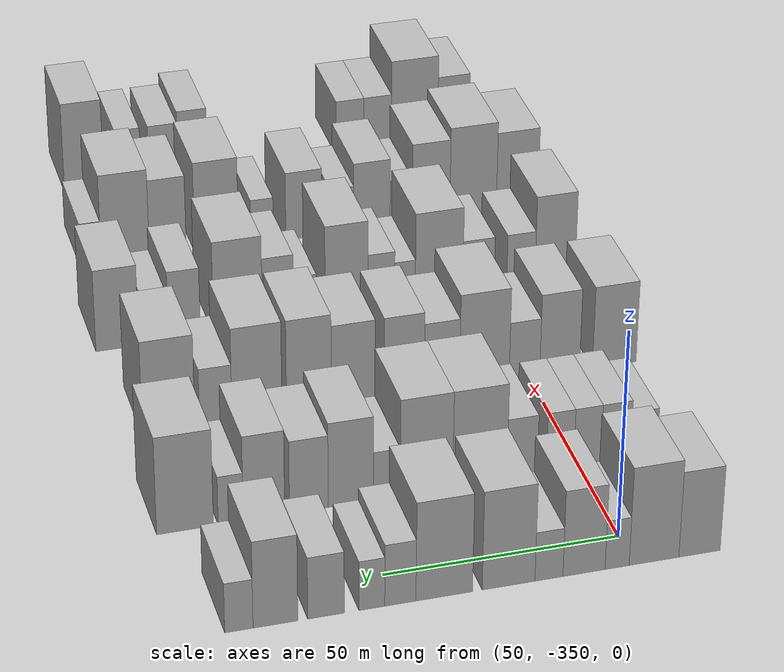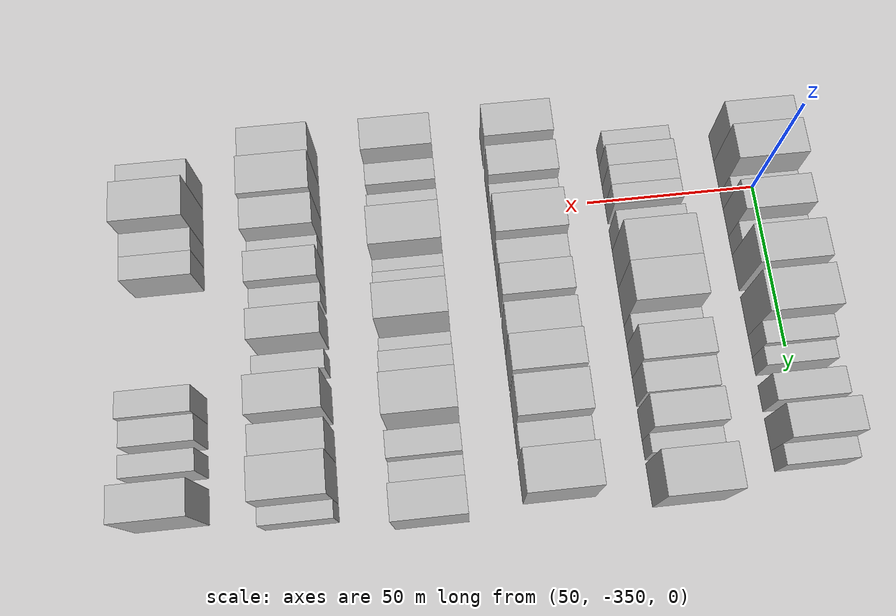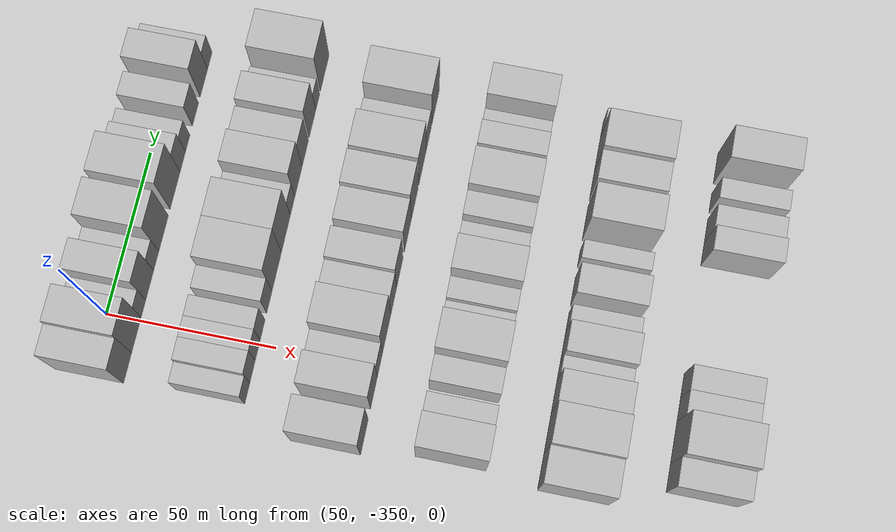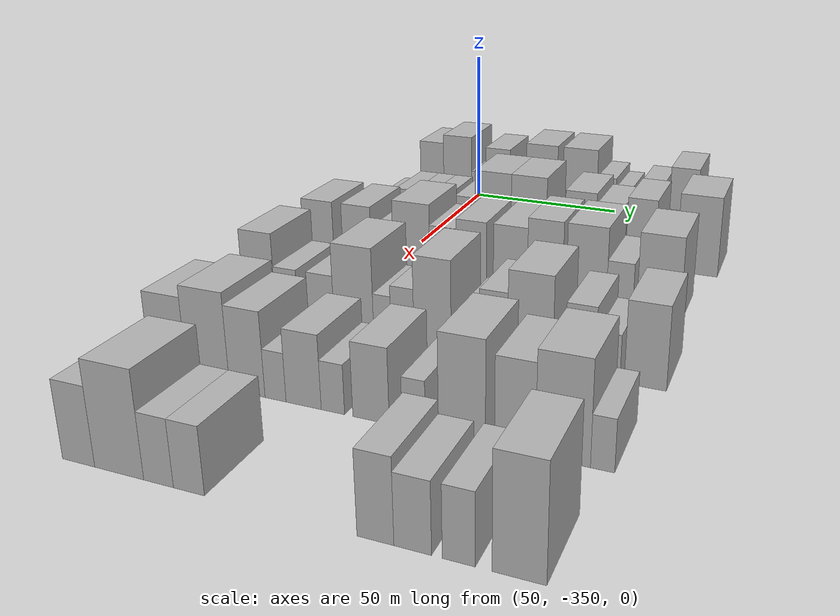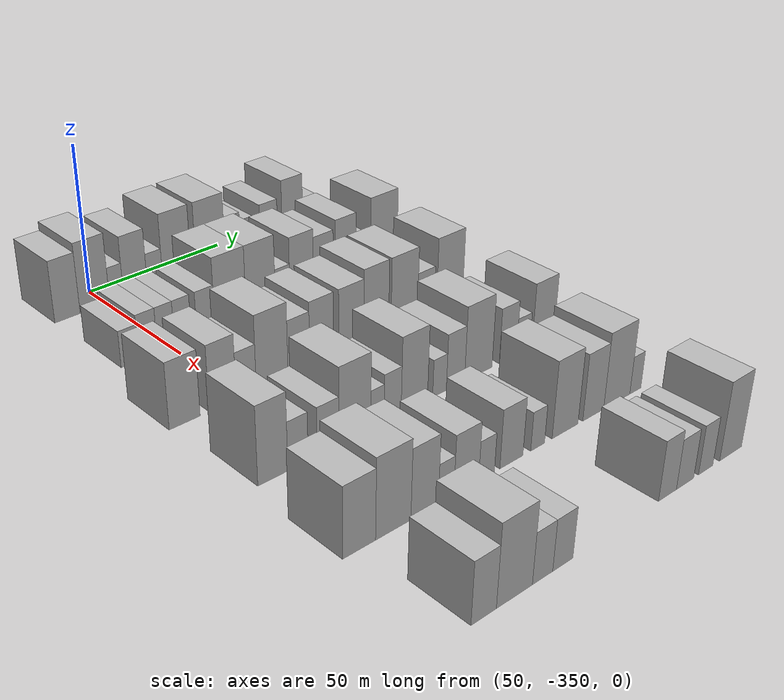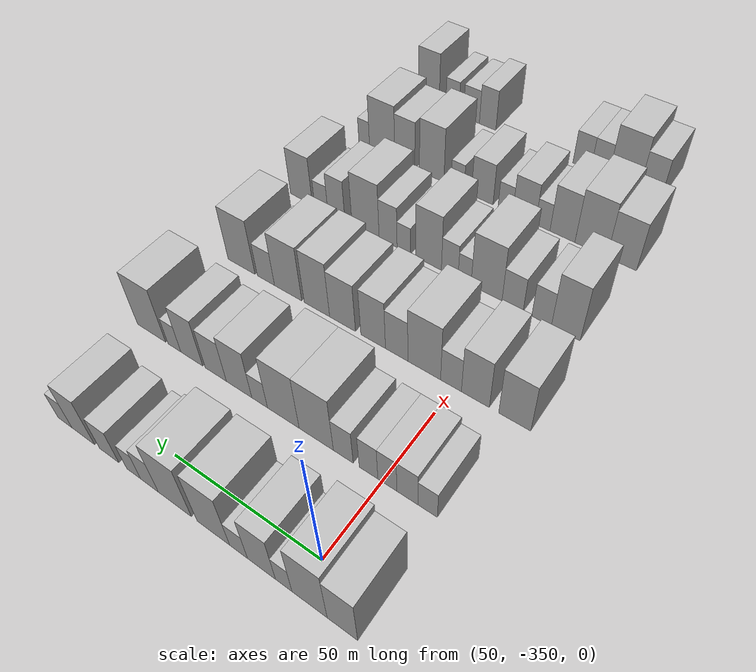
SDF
<sdf version="1.6">
 <world name="default">
  <model name="building_25">
   <static>1</static>
   <pose>50.0000 -363.9392 0 0.000000 0.000000 0.000000</pose>
   <link name="link">
    <pose>0 0 10.50 0 0 0</pose>
    <collision name="collision"><geometry><box><size>20.0000 8.8830 21.0000</size></box></geometry></collision>
    <visual name="visual">
     <cast_shadows>0</cast_shadows>
     <geometry><box><size>20.0000 8.8830 21.0000</size></box></geometry>
     <material>
      <script>
       <uri>model://HANNAS_wall/materials/scripts</uri>
       <uri>model://HANNAS_wall/materials/textures</uri>
       <name>vrc/HANNAS_wall</name>
      </script>
     </material>
    </visual>
   </link>
  </model>
  <model name="building_26">
   <static>1</static>
   <pose>50.0000 -354.1854 0 0.000000 0.000000 0.000000</pose>
   <link name="link">
    <pose>0 0 12.00 0 0 0</pose>
    <collision name="collision"><geometry><box><size>20.0000 10.6245 24.0000</size></box></geometry></collision>
    <visual name="visual">
     <cast_shadows>0</cast_shadows>
     <geometry><box><size>20.0000 10.6245 24.0000</size></box></geometry>
     <material>
      <script>
       <uri>model://HANNAS_wall/materials/scripts</uri>
       <uri>model://HANNAS_wall/materials/textures</uri>
       <name>vrc/HANNAS_wall</name>
      </script>
     </material>
    </visual>
   </link>
  </model>
  <model name="building_27">
   <static>1</static>
   <pose>50.0000 -346.3049 0 0.000000 0.000000 0.000000</pose>
   <link name="link">
    <pose>0 0 6.00 0 0 0</pose>
    <collision name="collision"><geometry><box><size>20.0000 5.1363 12.0000</size></box></geometry></collision>
    <visual name="visual">
     <cast_shadows>0</cast_shadows>
     <geometry><box><size>20.0000 5.1363 12.0000</size></box></geometry>
     <material>
      <script>
       <uri>model://HANNAS_wall/materials/scripts</uri>
       <uri>model://HANNAS_wall/materials/textures</uri>
       <name>vrc/HANNAS_wall</name>
      </script>
     </material>
    </visual>
   </link>
  </model>
  <model name="building_28">
   <static>1</static>
   <pose>50.0000 -339.2706 0 0.000000 0.000000 0.000000</pose>
   <link name="link">
    <pose>0 0 10.50 0 0 0</pose>
    <collision name="collision"><geometry><box><size>20.0000 8.9324 21.0000</size></box></geometry></collision>
    <visual name="visual">
     <cast_shadows>0</cast_shadows>
     <geometry><box><size>20.0000 8.9324 21.0000</size></box></geometry>
     <material>
      <script>
       <uri>model://HANNAS_wall/materials/scripts</uri>
       <uri>model://HANNAS_wall/materials/textures</uri>
       <name>vrc/HANNAS_wall</name>
      </script>
     </material>
    </visual>
   </link>
  </model>
  <model name="building_29">
   <static>1</static>
   <pose>50.0000 -331.8563 0 0.000000 0.000000 0.000000</pose>
   <link name="link">
    <pose>0 0 6.00 0 0 0</pose>
    <collision name="collision"><geometry><box><size>20.0000 5.8960 12.0000</size></box></geometry></collision>
    <visual name="visual">
     <cast_shadows>0</cast_shadows>
     <geometry><box><size>20.0000 5.8960 12.0000</size></box></geometry>
     <material>
      <script>
       <uri>model://HANNAS_wall/materials/scripts</uri>
       <uri>model://HANNAS_wall/materials/textures</uri>
       <name>vrc/HANNAS_wall</name>
      </script>
     </material>
    </visual>
   </link>
  </model>
  <model name="building_30">
   <static>1</static>
   <pose>50.0000 -323.3774 0 0.000000 0.000000 0.000000</pose>
   <link name="link">
    <pose>0 0 12.00 0 0 0</pose>
    <collision name="collision"><geometry><box><size>20.0000 11.0619 24.0000</size></box></geometry></collision>
    <visual name="visual">
     <cast_shadows>0</cast_shadows>
     <geometry><box><size>20.0000 11.0619 24.0000</size></box></geometry>
     <material>
      <script>
       <uri>model://HANNAS_wall/materials/scripts</uri>
       <uri>model://HANNAS_wall/materials/textures</uri>
       <name>vrc/HANNAS_wall</name>
      </script>
     </material>
    </visual>
   </link>
  </model>
  <model name="building_31">
   <static>1</static>
   <pose>50.0000 -309.9637 0 0.000000 0.000000 0.000000</pose>
   <link name="link">
    <pose>0 0 12.00 0 0 0</pose>
    <collision name="collision"><geometry><box><size>20.0000 11.7655 24.0000</size></box></geometry></collision>
    <visual name="visual">
     <cast_shadows>0</cast_shadows>
     <geometry><box><size>20.0000 11.7655 24.0000</size></box></geometry>
     <material>
      <script>
       <uri>model://HANNAS_wall/materials/scripts</uri>
       <uri>model://HANNAS_wall/materials/textures</uri>
       <name>vrc/HANNAS_wall</name>
      </script>
     </material>
    </visual>
   </link>
  </model>
  <model name="building_32">
   <static>1</static>
   <pose>50.0000 -300.8598 0 0.000000 0.000000 0.000000</pose>
   <link name="link">
    <pose>0 0 7.50 0 0 0</pose>
    <collision name="collision"><geometry><box><size>20.0000 6.4424 15.0000</size></box></geometry></collision>
    <visual name="visual">
     <cast_shadows>0</cast_shadows>
     <geometry><box><size>20.0000 6.4424 15.0000</size></box></geometry>
     <material>
      <script>
       <uri>model://HANNAS_wall/materials/scripts</uri>
       <uri>model://HANNAS_wall/materials/textures</uri>
       <name>vrc/HANNAS_wall</name>
      </script>
     </material>
    </visual>
   </link>
  </model>
  <model name="building_33">
   <static>1</static>
   <pose>50.0000 -294.9882 0 0.000000 0.000000 0.000000</pose>
   <link name="link">
    <pose>0 0 6.00 0 0 0</pose>
    <collision name="collision"><geometry><box><size>20.0000 5.3007 12.0000</size></box></geometry></collision>
    <visual name="visual">
     <cast_shadows>0</cast_shadows>
     <geometry><box><size>20.0000 5.3007 12.0000</size></box></geometry>
     <material>
      <script>
       <uri>model://HANNAS_wall/materials/scripts</uri>
       <uri>model://HANNAS_wall/materials/textures</uri>
       <name>vrc/HANNAS_wall</name>
      </script>
     </material>
    </visual>
   </link>
  </model>
  <model name="building_34">
   <static>1</static>
   <pose>50.0000 -285.6008 0 0.000000 0.000000 0.000000</pose>
   <link name="link">
    <pose>0 0 7.50 0 0 0</pose>
    <collision name="collision"><geometry><box><size>20.0000 7.4743 15.0000</size></box></geometry></collision>
    <visual name="visual">
     <cast_shadows>0</cast_shadows>
     <geometry><box><size>20.0000 7.4743 15.0000</size></box></geometry>
     <material>
      <script>
       <uri>model://HANNAS_wall/materials/scripts</uri>
       <uri>model://HANNAS_wall/materials/textures</uri>
       <name>vrc/HANNAS_wall</name>
      </script>
     </material>
    </visual>
   </link>
  </model>
  <model name="building_35">
   <static>1</static>
   <pose>50.0000 -275.3155 0 0.000000 0.000000 0.000000</pose>
   <link name="link">
    <pose>0 0 10.50 0 0 0</pose>
    <collision name="collision"><geometry><box><size>20.0000 9.0963 21.0000</size></box></geometry></collision>
    <visual name="visual">
     <cast_shadows>0</cast_shadows>
     <geometry><box><size>20.0000 9.0963 21.0000</size></box></geometry>
     <material>
      <script>
       <uri>model://HANNAS_wall/materials/scripts</uri>
       <uri>model://HANNAS_wall/materials/textures</uri>
       <name>vrc/HANNAS_wall</name>
      </script>
     </material>
    </visual>
   </link>
  </model>
  <model name="building_36">
   <static>1</static>
   <pose>50.0000 -267.9105 0 0.000000 0.000000 0.000000</pose>
   <link name="link">
    <pose>0 0 6.00 0 0 0</pose>
    <collision name="collision"><geometry><box><size>20.0000 5.7137 12.0000</size></box></geometry></collision>
    <visual name="visual">
     <cast_shadows>0</cast_shadows>
     <geometry><box><size>20.0000 5.7137 12.0000</size></box></geometry>
     <material>
      <script>
       <uri>model://HANNAS_wall/materials/scripts</uri>
       <uri>model://HANNAS_wall/materials/textures</uri>
       <name>vrc/HANNAS_wall</name>
      </script>
     </material>
    </visual>
   </link>
  </model>
  <model name="building_154">
   <static>1</static>
   <pose>85.0000 -364.2428 0 0.000000 0.000000 0.000000</pose>
   <link name="link">
    <pose>0 0 6.00 0 0 0</pose>
    <collision name="collision"><geometry><box><size>20.0000 5.9729 12.0000</size></box></geometry></collision>
    <visual name="visual">
     <cast_shadows>0</cast_shadows>
     <geometry><box><size>20.0000 5.9729 12.0000</size></box></geometry>
     <material>
      <script>
       <uri>model://HANNAS_wall/materials/scripts</uri>
       <uri>model://HANNAS_wall/materials/textures</uri>
       <name>vrc/HANNAS_wall</name>
      </script>
     </material>
    </visual>
   </link>
  </model>
  <model name="building_155">
   <static>1</static>
   <pose>85.0000 -357.9849 0 0.000000 0.000000 0.000000</pose>
   <link name="link">
    <pose>0 0 7.50 0 0 0</pose>
    <collision name="collision"><geometry><box><size>20.0000 6.5430 15.0000</size></box></geometry></collision>
    <visual name="visual">
     <cast_shadows>0</cast_shadows>
     <geometry><box><size>20.0000 6.5430 15.0000</size></box></geometry>
     <material>
      <script>
       <uri>model://HANNAS_wall/materials/scripts</uri>
       <uri>model://HANNAS_wall/materials/textures</uri>
       <name>vrc/HANNAS_wall</name>
      </script>
     </material>
    </visual>
   </link>
  </model>
  <model name="building_156">
   <static>1</static>
   <pose>85.0000 -351.6870 0 0.000000 0.000000 0.000000</pose>
   <link name="link">
    <pose>0 0 7.50 0 0 0</pose>
    <collision name="collision"><geometry><box><size>20.0000 6.0528 15.0000</size></box></geometry></collision>
    <visual name="visual">
     <cast_shadows>0</cast_shadows>
     <geometry><box><size>20.0000 6.0528 15.0000</size></box></geometry>
     <material>
      <script>
       <uri>model://HANNAS_wall/materials/scripts</uri>
       <uri>model://HANNAS_wall/materials/textures</uri>
       <name>vrc/HANNAS_wall</name>
      </script>
     </material>
    </visual>
   </link>
  </model>
  <model name="building_157">
   <static>1</static>
   <pose>85.0000 -345.6336 0 0.000000 0.000000 0.000000</pose>
   <link name="link">
    <pose>0 0 7.50 0 0 0</pose>
    <collision name="collision"><geometry><box><size>20.0000 6.0540 15.0000</size></box></geometry></collision>
    <visual name="visual">
     <cast_shadows>0</cast_shadows>
     <geometry><box><size>20.0000 6.0540 15.0000</size></box></geometry>
     <material>
      <script>
       <uri>model://HANNAS_wall/materials/scripts</uri>
       <uri>model://HANNAS_wall/materials/textures</uri>
       <name>vrc/HANNAS_wall</name>
      </script>
     </material>
    </visual>
   </link>
  </model>
  <model name="building_158">
   <static>1</static>
   <pose>85.0000 -337.2817 0 0.000000 0.000000 0.000000</pose>
   <link name="link">
    <pose>0 0 7.50 0 0 0</pose>
    <collision name="collision"><geometry><box><size>20.0000 6.6499 15.0000</size></box></geometry></collision>
    <visual name="visual">
     <cast_shadows>0</cast_shadows>
     <geometry><box><size>20.0000 6.6499 15.0000</size></box></geometry>
     <material>
      <script>
       <uri>model://HANNAS_wall/materials/scripts</uri>
       <uri>model://HANNAS_wall/materials/textures</uri>
       <name>vrc/HANNAS_wall</name>
      </script>
     </material>
    </visual>
   </link>
  </model>
  <model name="building_159">
   <static>1</static>
   <pose>85.0000 -328.0324 0 0.000000 0.000000 0.000000</pose>
   <link name="link">
    <pose>0 0 12.00 0 0 0</pose>
    <collision name="collision"><geometry><box><size>20.0000 11.8487 24.0000</size></box></geometry></collision>
    <visual name="visual">
     <cast_shadows>0</cast_shadows>
     <geometry><box><size>20.0000 11.8487 24.0000</size></box></geometry>
     <material>
      <script>
       <uri>model://HANNAS_wall/materials/scripts</uri>
       <uri>model://HANNAS_wall/materials/textures</uri>
       <name>vrc/HANNAS_wall</name>
      </script>
     </material>
    </visual>
   </link>
  </model>
  <model name="building_160">
   <static>1</static>
   <pose>85.0000 -316.4117 0 0.000000 0.000000 0.000000</pose>
   <link name="link">
    <pose>0 0 12.00 0 0 0</pose>
    <collision name="collision"><geometry><box><size>20.0000 11.3928 24.0000</size></box></geometry></collision>
    <visual name="visual">
     <cast_shadows>0</cast_shadows>
     <geometry><box><size>20.0000 11.3928 24.0000</size></box></geometry>
     <material>
      <script>
       <uri>model://HANNAS_wall/materials/scripts</uri>
       <uri>model://HANNAS_wall/materials/textures</uri>
       <name>vrc/HANNAS_wall</name>
      </script>
     </material>
    </visual>
   </link>
  </model>
  <model name="building_161">
   <static>1</static>
   <pose>85.0000 -307.8122 0 0.000000 0.000000 0.000000</pose>
   <link name="link">
    <pose>0 0 6.00 0 0 0</pose>
    <collision name="collision"><geometry><box><size>20.0000 5.8061 12.0000</size></box></geometry></collision>
    <visual name="visual">
     <cast_shadows>0</cast_shadows>
     <geometry><box><size>20.0000 5.8061 12.0000</size></box></geometry>
     <material>
      <script>
       <uri>model://HANNAS_wall/materials/scripts</uri>
       <uri>model://HANNAS_wall/materials/textures</uri>
       <name>vrc/HANNAS_wall</name>
      </script>
     </material>
    </visual>
   </link>
  </model>
  <model name="building_162">
   <static>1</static>
   <pose>85.0000 -300.0781 0 0.000000 0.000000 0.000000</pose>
   <link name="link">
    <pose>0 0 10.50 0 0 0</pose>
    <collision name="collision"><geometry><box><size>20.0000 9.6621 21.0000</size></box></geometry></collision>
    <visual name="visual">
     <cast_shadows>0</cast_shadows>
     <geometry><box><size>20.0000 9.6621 21.0000</size></box></geometry>
     <material>
      <script>
       <uri>model://HANNAS_wall/materials/scripts</uri>
       <uri>model://HANNAS_wall/materials/textures</uri>
       <name>vrc/HANNAS_wall</name>
      </script>
     </material>
    </visual>
   </link>
  </model>
  <model name="building_163">
   <static>1</static>
   <pose>85.0000 -291.1208 0 0.000000 0.000000 0.000000</pose>
   <link name="link">
    <pose>0 0 9.00 0 0 0</pose>
    <collision name="collision"><geometry><box><size>20.0000 8.2526 18.0000</size></box></geometry></collision>
    <visual name="visual">
     <cast_shadows>0</cast_shadows>
     <geometry><box><size>20.0000 8.2526 18.0000</size></box></geometry>
     <material>
      <script>
       <uri>model://HANNAS_wall/materials/scripts</uri>
       <uri>model://HANNAS_wall/materials/textures</uri>
       <name>vrc/HANNAS_wall</name>
      </script>
     </material>
    </visual>
   </link>
  </model>
  <model name="building_164">
   <static>1</static>
   <pose>85.0000 -281.5907 0 0.000000 0.000000 0.000000</pose>
   <link name="link">
    <pose>0 0 10.50 0 0 0</pose>
    <collision name="collision"><geometry><box><size>20.0000 8.8075 21.0000</size></box></geometry></collision>
    <visual name="visual">
     <cast_shadows>0</cast_shadows>
     <geometry><box><size>20.0000 8.8075 21.0000</size></box></geometry>
     <material>
      <script>
       <uri>model://HANNAS_wall/materials/scripts</uri>
       <uri>model://HANNAS_wall/materials/textures</uri>
       <name>vrc/HANNAS_wall</name>
      </script>
     </material>
    </visual>
   </link>
  </model>
  <model name="building_165">
   <static>1</static>
   <pose>85.0000 -274.5434 0 0.000000 0.000000 0.000000</pose>
   <link name="link">
    <pose>0 0 6.00 0 0 0</pose>
    <collision name="collision"><geometry><box><size>20.0000 5.2871 12.0000</size></box></geometry></collision>
    <visual name="visual">
     <cast_shadows>0</cast_shadows>
     <geometry><box><size>20.0000 5.2871 12.0000</size></box></geometry>
     <material>
      <script>
       <uri>model://HANNAS_wall/materials/scripts</uri>
       <uri>model://HANNAS_wall/materials/textures</uri>
       <name>vrc/HANNAS_wall</name>
      </script>
     </material>
    </visual>
   </link>
  </model>
  <model name="building_166">
   <static>1</static>
   <pose>85.0000 -264.9329 0 0.000000 0.000000 0.000000</pose>
   <link name="link">
    <pose>0 0 12.00 0 0 0</pose>
    <collision name="collision"><geometry><box><size>20.0000 11.9340 24.0000</size></box></geometry></collision>
    <visual name="visual">
     <cast_shadows>0</cast_shadows>
     <geometry><box><size>20.0000 11.9340 24.0000</size></box></geometry>
     <material>
      <script>
       <uri>model://HANNAS_wall/materials/scripts</uri>
       <uri>model://HANNAS_wall/materials/textures</uri>
       <name>vrc/HANNAS_wall</name>
      </script>
     </material>
    </visual>
   </link>
  </model>
  <model name="building_279">
   <static>1</static>
   <pose>120.0000 -369.6785 0 0.000000 0.000000 0.000000</pose>
   <link name="link">
    <pose>0 0 10.50 0 0 0</pose>
    <collision name="collision"><geometry><box><size>20.0000 10.1361 21.0000</size></box></geometry></collision>
    <visual name="visual">
     <cast_shadows>0</cast_shadows>
     <geometry><box><size>20.0000 10.1361 21.0000</size></box></geometry>
     <material>
      <script>
       <uri>model://HANNAS_wall/materials/scripts</uri>
       <uri>model://HANNAS_wall/materials/textures</uri>
       <name>vrc/HANNAS_wall</name>
      </script>
     </material>
    </visual>
   </link>
  </model>
  <model name="building_280">
   <static>1</static>
   <pose>120.0000 -357.0110 0 0.000000 0.000000 0.000000</pose>
   <link name="link">
    <pose>0 0 10.50 0 0 0</pose>
    <collision name="collision"><geometry><box><size>20.0000 9.1988 21.0000</size></box></geometry></collision>
    <visual name="visual">
     <cast_shadows>0</cast_shadows>
     <geometry><box><size>20.0000 9.1988 21.0000</size></box></geometry>
     <material>
      <script>
       <uri>model://HANNAS_wall/materials/scripts</uri>
       <uri>model://HANNAS_wall/materials/textures</uri>
       <name>vrc/HANNAS_wall</name>
      </script>
     </material>
    </visual>
   </link>
  </model>
  <model name="building_281">
   <static>1</static>
   <pose>120.0000 -348.9032 0 0.000000 0.000000 0.000000</pose>
   <link name="link">
    <pose>0 0 7.50 0 0 0</pose>
    <collision name="collision"><geometry><box><size>20.0000 7.0169 15.0000</size></box></geometry></collision>
    <visual name="visual">
     <cast_shadows>0</cast_shadows>
     <geometry><box><size>20.0000 7.0169 15.0000</size></box></geometry>
     <material>
      <script>
       <uri>model://HANNAS_wall/materials/scripts</uri>
       <uri>model://HANNAS_wall/materials/textures</uri>
       <name>vrc/HANNAS_wall</name>
      </script>
     </material>
    </visual>
   </link>
  </model>
  <model name="building_282">
   <static>1</static>
   <pose>120.0000 -339.7123 0 0.000000 0.000000 0.000000</pose>
   <link name="link">
    <pose>0 0 12.00 0 0 0</pose>
    <collision name="collision"><geometry><box><size>20.0000 11.3648 24.0000</size></box></geometry></collision>
    <visual name="visual">
     <cast_shadows>0</cast_shadows>
     <geometry><box><size>20.0000 11.3648 24.0000</size></box></geometry>
     <material>
      <script>
       <uri>model://HANNAS_wall/materials/scripts</uri>
       <uri>model://HANNAS_wall/materials/textures</uri>
       <name>vrc/HANNAS_wall</name>
      </script>
     </material>
    </visual>
   </link>
  </model>
  <model name="building_283">
   <static>1</static>
   <pose>120.0000 -330.0225 0 0.000000 0.000000 0.000000</pose>
   <link name="link">
    <pose>0 0 9.00 0 0 0</pose>
    <collision name="collision"><geometry><box><size>20.0000 8.0147 18.0000</size></box></geometry></collision>
    <visual name="visual">
     <cast_shadows>0</cast_shadows>
     <geometry><box><size>20.0000 8.0147 18.0000</size></box></geometry>
     <material>
      <script>
       <uri>model://HANNAS_wall/materials/scripts</uri>
       <uri>model://HANNAS_wall/materials/textures</uri>
       <name>vrc/HANNAS_wall</name>
      </script>
     </material>
    </visual>
   </link>
  </model>
  <model name="building_284">
   <static>1</static>
   <pose>120.0000 -321.4961 0 0.000000 0.000000 0.000000</pose>
   <link name="link">
    <pose>0 0 10.50 0 0 0</pose>
    <collision name="collision"><geometry><box><size>20.0000 9.0382 21.0000</size></box></geometry></collision>
    <visual name="visual">
     <cast_shadows>0</cast_shadows>
     <geometry><box><size>20.0000 9.0382 21.0000</size></box></geometry>
     <material>
      <script>
       <uri>model://HANNAS_wall/materials/scripts</uri>
       <uri>model://HANNAS_wall/materials/textures</uri>
       <name>vrc/HANNAS_wall</name>
      </script>
     </material>
    </visual>
   </link>
  </model>
  <model name="building_285">
   <static>1</static>
   <pose>120.0000 -310.0568 0 0.000000 0.000000 0.000000</pose>
   <link name="link">
    <pose>0 0 10.50 0 0 0</pose>
    <collision name="collision"><geometry><box><size>20.0000 9.8403 21.0000</size></box></geometry></collision>
    <visual name="visual">
     <cast_shadows>0</cast_shadows>
     <geometry><box><size>20.0000 9.8403 21.0000</size></box></geometry>
     <material>
      <script>
       <uri>model://HANNAS_wall/materials/scripts</uri>
       <uri>model://HANNAS_wall/materials/textures</uri>
       <name>vrc/HANNAS_wall</name>
      </script>
     </material>
    </visual>
   </link>
  </model>
  <model name="building_286">
   <static>1</static>
   <pose>120.0000 -300.1592 0 0.000000 0.000000 0.000000</pose>
   <link name="link">
    <pose>0 0 12.00 0 0 0</pose>
    <collision name="collision"><geometry><box><size>20.0000 9.9548 24.0000</size></box></geometry></collision>
    <visual name="visual">
     <cast_shadows>0</cast_shadows>
     <geometry><box><size>20.0000 9.9548 24.0000</size></box></geometry>
     <material>
      <script>
       <uri>model://HANNAS_wall/materials/scripts</uri>
       <uri>model://HANNAS_wall/materials/textures</uri>
       <name>vrc/HANNAS_wall</name>
      </script>
     </material>
    </visual>
   </link>
  </model>
  <model name="building_287">
   <static>1</static>
   <pose>120.0000 -288.6484 0 0.000000 0.000000 0.000000</pose>
   <link name="link">
    <pose>0 0 12.00 0 0 0</pose>
    <collision name="collision"><geometry><box><size>20.0000 11.0668 24.0000</size></box></geometry></collision>
    <visual name="visual">
     <cast_shadows>0</cast_shadows>
     <geometry><box><size>20.0000 11.0668 24.0000</size></box></geometry>
     <material>
      <script>
       <uri>model://HANNAS_wall/materials/scripts</uri>
       <uri>model://HANNAS_wall/materials/textures</uri>
       <name>vrc/HANNAS_wall</name>
      </script>
     </material>
    </visual>
   </link>
  </model>
  <model name="building_288">
   <static>1</static>
   <pose>120.0000 -279.5460 0 0.000000 0.000000 0.000000</pose>
   <link name="link">
    <pose>0 0 7.50 0 0 0</pose>
    <collision name="collision"><geometry><box><size>20.0000 7.1381 15.0000</size></box></geometry></collision>
    <visual name="visual">
     <cast_shadows>0</cast_shadows>
     <geometry><box><size>20.0000 7.1381 15.0000</size></box></geometry>
     <material>
      <script>
       <uri>model://HANNAS_wall/materials/scripts</uri>
       <uri>model://HANNAS_wall/materials/textures</uri>
       <name>vrc/HANNAS_wall</name>
      </script>
     </material>
    </visual>
   </link>
  </model>
  <model name="building_289">
   <static>1</static>
   <pose>120.0000 -269.2279 0 0.000000 0.000000 0.000000</pose>
   <link name="link">
    <pose>0 0 12.00 0 0 0</pose>
    <collision name="collision"><geometry><box><size>20.0000 11.4980 24.0000</size></box></geometry></collision>
    <visual name="visual">
     <cast_shadows>0</cast_shadows>
     <geometry><box><size>20.0000 11.4980 24.0000</size></box></geometry>
     <material>
      <script>
       <uri>model://HANNAS_wall/materials/scripts</uri>
       <uri>model://HANNAS_wall/materials/textures</uri>
       <name>vrc/HANNAS_wall</name>
      </script>
     </material>
    </visual>
   </link>
  </model>
  <model name="building_402">
   <static>1</static>
   <pose>155.0000 -367.2908 0 0.000000 0.000000 0.000000</pose>
   <link name="link">
    <pose>0 0 12.00 0 0 0</pose>
    <collision name="collision"><geometry><box><size>20.0000 9.6505 24.0000</size></box></geometry></collision>
    <visual name="visual">
     <cast_shadows>0</cast_shadows>
     <geometry><box><size>20.0000 9.6505 24.0000</size></box></geometry>
     <material>
      <script>
       <uri>model://HANNAS_wall/materials/scripts</uri>
       <uri>model://HANNAS_wall/materials/textures</uri>
       <name>vrc/HANNAS_wall</name>
      </script>
     </material>
    </visual>
   </link>
  </model>
  <model name="building_403">
   <static>1</static>
   <pose>155.0000 -359.1051 0 0.000000 0.000000 0.000000</pose>
   <link name="link">
    <pose>0 0 7.50 0 0 0</pose>
    <collision name="collision"><geometry><box><size>20.0000 6.7209 15.0000</size></box></geometry></collision>
    <visual name="visual">
     <cast_shadows>0</cast_shadows>
     <geometry><box><size>20.0000 6.7209 15.0000</size></box></geometry>
     <material>
      <script>
       <uri>model://HANNAS_wall/materials/scripts</uri>
       <uri>model://HANNAS_wall/materials/textures</uri>
       <name>vrc/HANNAS_wall</name>
      </script>
     </material>
    </visual>
   </link>
  </model>
  <model name="building_404">
   <static>1</static>
   <pose>155.0000 -349.0039 0 0.000000 0.000000 0.000000</pose>
   <link name="link">
    <pose>0 0 7.50 0 0 0</pose>
    <collision name="collision"><geometry><box><size>20.0000 7.4814 15.0000</size></box></geometry></collision>
    <visual name="visual">
     <cast_shadows>0</cast_shadows>
     <geometry><box><size>20.0000 7.4814 15.0000</size></box></geometry>
     <material>
      <script>
       <uri>model://HANNAS_wall/materials/scripts</uri>
       <uri>model://HANNAS_wall/materials/textures</uri>
       <name>vrc/HANNAS_wall</name>
      </script>
     </material>
    </visual>
   </link>
  </model>
  <model name="building_405">
   <static>1</static>
   <pose>155.0000 -339.6458 0 0.000000 0.000000 0.000000</pose>
   <link name="link">
    <pose>0 0 12.00 0 0 0</pose>
    <collision name="collision"><geometry><box><size>20.0000 11.2349 24.0000</size></box></geometry></collision>
    <visual name="visual">
     <cast_shadows>0</cast_shadows>
     <geometry><box><size>20.0000 11.2349 24.0000</size></box></geometry>
     <material>
      <script>
       <uri>model://HANNAS_wall/materials/scripts</uri>
       <uri>model://HANNAS_wall/materials/textures</uri>
       <name>vrc/HANNAS_wall</name>
      </script>
     </material>
    </visual>
   </link>
  </model>
  <model name="building_406">
   <static>1</static>
   <pose>155.0000 -331.6168 0 0.000000 0.000000 0.000000</pose>
   <link name="link">
    <pose>0 0 6.00 0 0 0</pose>
    <collision name="collision"><geometry><box><size>20.0000 4.8231 12.0000</size></box></geometry></collision>
    <visual name="visual">
     <cast_shadows>0</cast_shadows>
     <geometry><box><size>20.0000 4.8231 12.0000</size></box></geometry>
     <material>
      <script>
       <uri>model://HANNAS_wall/materials/scripts</uri>
       <uri>model://HANNAS_wall/materials/textures</uri>
       <name>vrc/HANNAS_wall</name>
      </script>
     </material>
    </visual>
   </link>
  </model>
  <model name="building_407">
   <static>1</static>
   <pose>155.0000 -326.0606 0 0.000000 0.000000 0.000000</pose>
   <link name="link">
    <pose>0 0 7.50 0 0 0</pose>
    <collision name="collision"><geometry><box><size>20.0000 6.2895 15.0000</size></box></geometry></collision>
    <visual name="visual">
     <cast_shadows>0</cast_shadows>
     <geometry><box><size>20.0000 6.2895 15.0000</size></box></geometry>
     <material>
      <script>
       <uri>model://HANNAS_wall/materials/scripts</uri>
       <uri>model://HANNAS_wall/materials/textures</uri>
       <name>vrc/HANNAS_wall</name>
      </script>
     </material>
    </visual>
   </link>
  </model>
  <model name="building_408">
   <static>1</static>
   <pose>155.0000 -317.9302 0 0.000000 0.000000 0.000000</pose>
   <link name="link">
    <pose>0 0 12.00 0 0 0</pose>
    <collision name="collision"><geometry><box><size>20.0000 9.9714 24.0000</size></box></geometry></collision>
    <visual name="visual">
     <cast_shadows>0</cast_shadows>
     <geometry><box><size>20.0000 9.9714 24.0000</size></box></geometry>
     <material>
      <script>
       <uri>model://HANNAS_wall/materials/scripts</uri>
       <uri>model://HANNAS_wall/materials/textures</uri>
       <name>vrc/HANNAS_wall</name>
      </script>
     </material>
    </visual>
   </link>
  </model>
  <model name="building_409">
   <static>1</static>
   <pose>155.0000 -308.2805 0 0.000000 0.000000 0.000000</pose>
   <link name="link">
    <pose>0 0 6.00 0 0 0</pose>
    <collision name="collision"><geometry><box><size>20.0000 5.3280 12.0000</size></box></geometry></collision>
    <visual name="visual">
     <cast_shadows>0</cast_shadows>
     <geometry><box><size>20.0000 5.3280 12.0000</size></box></geometry>
     <material>
      <script>
       <uri>model://HANNAS_wall/materials/scripts</uri>
       <uri>model://HANNAS_wall/materials/textures</uri>
       <name>vrc/HANNAS_wall</name>
      </script>
     </material>
    </visual>
   </link>
  </model>
  <model name="building_410">
   <static>1</static>
   <pose>155.0000 -301.9968 0 0.000000 0.000000 0.000000</pose>
   <link name="link">
    <pose>0 0 9.00 0 0 0</pose>
    <collision name="collision"><geometry><box><size>20.0000 7.2395 18.0000</size></box></geometry></collision>
    <visual name="visual">
     <cast_shadows>0</cast_shadows>
     <geometry><box><size>20.0000 7.2395 18.0000</size></box></geometry>
     <material>
      <script>
       <uri>model://HANNAS_wall/materials/scripts</uri>
       <uri>model://HANNAS_wall/materials/textures</uri>
       <name>vrc/HANNAS_wall</name>
      </script>
     </material>
    </visual>
   </link>
  </model>
  <model name="building_411">
   <static>1</static>
   <pose>155.0000 -292.7622 0 0.000000 0.000000 0.000000</pose>
   <link name="link">
    <pose>0 0 12.00 0 0 0</pose>
    <collision name="collision"><geometry><box><size>20.0000 11.2296 24.0000</size></box></geometry></collision>
    <visual name="visual">
     <cast_shadows>0</cast_shadows>
     <geometry><box><size>20.0000 11.2296 24.0000</size></box></geometry>
     <material>
      <script>
       <uri>model://HANNAS_wall/materials/scripts</uri>
       <uri>model://HANNAS_wall/materials/textures</uri>
       <name>vrc/HANNAS_wall</name>
      </script>
     </material>
    </visual>
   </link>
  </model>
  <model name="building_412">
   <static>1</static>
   <pose>155.0000 -280.4974 0 0.000000 0.000000 0.000000</pose>
   <link name="link">
    <pose>0 0 9.00 0 0 0</pose>
    <collision name="collision"><geometry><box><size>20.0000 7.2999 18.0000</size></box></geometry></collision>
    <visual name="visual">
     <cast_shadows>0</cast_shadows>
     <geometry><box><size>20.0000 7.2999 18.0000</size></box></geometry>
     <material>
      <script>
       <uri>model://HANNAS_wall/materials/scripts</uri>
       <uri>model://HANNAS_wall/materials/textures</uri>
       <name>vrc/HANNAS_wall</name>
      </script>
     </material>
    </visual>
   </link>
  </model>
  <model name="building_413">
   <static>1</static>
   <pose>155.0000 -273.9648 0 0.000000 0.000000 0.000000</pose>
   <link name="link">
    <pose>0 0 6.00 0 0 0</pose>
    <collision name="collision"><geometry><box><size>20.0000 5.7653 12.0000</size></box></geometry></collision>
    <visual name="visual">
     <cast_shadows>0</cast_shadows>
     <geometry><box><size>20.0000 5.7653 12.0000</size></box></geometry>
     <material>
      <script>
       <uri>model://HANNAS_wall/materials/scripts</uri>
       <uri>model://HANNAS_wall/materials/textures</uri>
       <name>vrc/HANNAS_wall</name>
      </script>
     </material>
    </visual>
   </link>
  </model>
  <model name="building_414">
   <static>1</static>
   <pose>155.0000 -265.2158 0 0.000000 0.000000 0.000000</pose>
   <link name="link">
    <pose>0 0 10.50 0 0 0</pose>
    <collision name="collision"><geometry><box><size>20.0000 9.7327 21.0000</size></box></geometry></collision>
    <visual name="visual">
     <cast_shadows>0</cast_shadows>
     <geometry><box><size>20.0000 9.7327 21.0000</size></box></geometry>
     <material>
      <script>
       <uri>model://HANNAS_wall/materials/scripts</uri>
       <uri>model://HANNAS_wall/materials/textures</uri>
       <name>vrc/HANNAS_wall</name>
      </script>
     </material>
    </visual>
   </link>
  </model>
  <model name="building_530">
   <static>1</static>
   <pose>190.0000 -369.3085 0 0.000000 0.000000 0.000000</pose>
   <link name="link">
    <pose>0 0 10.50 0 0 0</pose>
    <collision name="collision"><geometry><box><size>20.0000 10.3638 21.0000</size></box></geometry></collision>
    <visual name="visual">
     <cast_shadows>0</cast_shadows>
     <geometry><box><size>20.0000 10.3638 21.0000</size></box></geometry>
     <material>
      <script>
       <uri>model://HANNAS_wall/materials/scripts</uri>
       <uri>model://HANNAS_wall/materials/textures</uri>
       <name>vrc/HANNAS_wall</name>
      </script>
     </material>
    </visual>
   </link>
  </model>
  <model name="building_531">
   <static>1</static>
   <pose>190.0000 -358.3658 0 0.000000 0.000000 0.000000</pose>
   <link name="link">
    <pose>0 0 12.00 0 0 0</pose>
    <collision name="collision"><geometry><box><size>20.0000 11.5216 24.0000</size></box></geometry></collision>
    <visual name="visual">
     <cast_shadows>0</cast_shadows>
     <geometry><box><size>20.0000 11.5216 24.0000</size></box></geometry>
     <material>
      <script>
       <uri>model://HANNAS_wall/materials/scripts</uri>
       <uri>model://HANNAS_wall/materials/textures</uri>
       <name>vrc/HANNAS_wall</name>
      </script>
     </material>
    </visual>
   </link>
  </model>
  <model name="building_532">
   <static>1</static>
   <pose>190.0000 -347.9698 0 0.000000 0.000000 0.000000</pose>
   <link name="link">
    <pose>0 0 10.50 0 0 0</pose>
    <collision name="collision"><geometry><box><size>20.0000 9.2703 21.0000</size></box></geometry></collision>
    <visual name="visual">
     <cast_shadows>0</cast_shadows>
     <geometry><box><size>20.0000 9.2703 21.0000</size></box></geometry>
     <material>
      <script>
       <uri>model://HANNAS_wall/materials/scripts</uri>
       <uri>model://HANNAS_wall/materials/textures</uri>
       <name>vrc/HANNAS_wall</name>
      </script>
     </material>
    </visual>
   </link>
  </model>
  <model name="building_533">
   <static>1</static>
   <pose>190.0000 -340.6298 0 0.000000 0.000000 0.000000</pose>
   <link name="link">
    <pose>0 0 6.00 0 0 0</pose>
    <collision name="collision"><geometry><box><size>20.0000 5.4097 12.0000</size></box></geometry></collision>
    <visual name="visual">
     <cast_shadows>0</cast_shadows>
     <geometry><box><size>20.0000 5.4097 12.0000</size></box></geometry>
     <material>
      <script>
       <uri>model://HANNAS_wall/materials/scripts</uri>
       <uri>model://HANNAS_wall/materials/textures</uri>
       <name>vrc/HANNAS_wall</name>
      </script>
     </material>
    </visual>
   </link>
  </model>
  <model name="building_534">
   <static>1</static>
   <pose>190.0000 -333.4958 0 0.000000 0.000000 0.000000</pose>
   <link name="link">
    <pose>0 0 9.00 0 0 0</pose>
    <collision name="collision"><geometry><box><size>20.0000 8.8584 18.0000</size></box></geometry></collision>
    <visual name="visual">
     <cast_shadows>0</cast_shadows>
     <geometry><box><size>20.0000 8.8584 18.0000</size></box></geometry>
     <material>
      <script>
       <uri>model://HANNAS_wall/materials/scripts</uri>
       <uri>model://HANNAS_wall/materials/textures</uri>
       <name>vrc/HANNAS_wall</name>
      </script>
     </material>
    </visual>
   </link>
  </model>
  <model name="building_535">
   <static>1</static>
   <pose>190.0000 -326.1897 0 0.000000 0.000000 0.000000</pose>
   <link name="link">
    <pose>0 0 6.00 0 0 0</pose>
    <collision name="collision"><geometry><box><size>20.0000 5.7539 12.0000</size></box></geometry></collision>
    <visual name="visual">
     <cast_shadows>0</cast_shadows>
     <geometry><box><size>20.0000 5.7539 12.0000</size></box></geometry>
     <material>
      <script>
       <uri>model://HANNAS_wall/materials/scripts</uri>
       <uri>model://HANNAS_wall/materials/textures</uri>
       <name>vrc/HANNAS_wall</name>
      </script>
     </material>
    </visual>
   </link>
  </model>
  <model name="building_536">
   <static>1</static>
   <pose>190.0000 -316.9599 0 0.000000 0.000000 0.000000</pose>
   <link name="link">
    <pose>0 0 9.00 0 0 0</pose>
    <collision name="collision"><geometry><box><size>20.0000 8.7056 18.0000</size></box></geometry></collision>
    <visual name="visual">
     <cast_shadows>0</cast_shadows>
     <geometry><box><size>20.0000 8.7056 18.0000</size></box></geometry>
     <material>
      <script>
       <uri>model://HANNAS_wall/materials/scripts</uri>
       <uri>model://HANNAS_wall/materials/textures</uri>
       <name>vrc/HANNAS_wall</name>
      </script>
     </material>
    </visual>
   </link>
  </model>
  <model name="building_537">
   <static>1</static>
   <pose>190.0000 -306.9158 0 0.000000 0.000000 0.000000</pose>
   <link name="link">
    <pose>0 0 6.00 0 0 0</pose>
    <collision name="collision"><geometry><box><size>20.0000 5.3827 12.0000</size></box></geometry></collision>
    <visual name="visual">
     <cast_shadows>0</cast_shadows>
     <geometry><box><size>20.0000 5.3827 12.0000</size></box></geometry>
     <material>
      <script>
       <uri>model://HANNAS_wall/materials/scripts</uri>
       <uri>model://HANNAS_wall/materials/textures</uri>
       <name>vrc/HANNAS_wall</name>
      </script>
     </material>
    </visual>
   </link>
  </model>
  <model name="building_538">
   <static>1</static>
   <pose>190.0000 -296.0019 0 0.000000 0.000000 0.000000</pose>
   <link name="link">
    <pose>0 0 12.00 0 0 0</pose>
    <collision name="collision"><geometry><box><size>20.0000 10.4450 24.0000</size></box></geometry></collision>
    <visual name="visual">
     <cast_shadows>0</cast_shadows>
     <geometry><box><size>20.0000 10.4450 24.0000</size></box></geometry>
     <material>
      <script>
       <uri>model://HANNAS_wall/materials/scripts</uri>
       <uri>model://HANNAS_wall/materials/textures</uri>
       <name>vrc/HANNAS_wall</name>
      </script>
     </material>
    </visual>
   </link>
  </model>
  <model name="building_539">
   <static>1</static>
   <pose>190.0000 -284.4059 0 0.000000 0.000000 0.000000</pose>
   <link name="link">
    <pose>0 0 10.50 0 0 0</pose>
    <collision name="collision"><geometry><box><size>20.0000 8.7469 21.0000</size></box></geometry></collision>
    <visual name="visual">
     <cast_shadows>0</cast_shadows>
     <geometry><box><size>20.0000 8.7469 21.0000</size></box></geometry>
     <material>
      <script>
       <uri>model://HANNAS_wall/materials/scripts</uri>
       <uri>model://HANNAS_wall/materials/textures</uri>
       <name>vrc/HANNAS_wall</name>
      </script>
     </material>
    </visual>
   </link>
  </model>
  <model name="building_540">
   <static>1</static>
   <pose>190.0000 -274.3633 0 0.000000 0.000000 0.000000</pose>
   <link name="link">
    <pose>0 0 12.00 0 0 0</pose>
    <collision name="collision"><geometry><box><size>20.0000 11.3383 24.0000</size></box></geometry></collision>
    <visual name="visual">
     <cast_shadows>0</cast_shadows>
     <geometry><box><size>20.0000 11.3383 24.0000</size></box></geometry>
     <material>
      <script>
       <uri>model://HANNAS_wall/materials/scripts</uri>
       <uri>model://HANNAS_wall/materials/textures</uri>
       <name>vrc/HANNAS_wall</name>
      </script>
     </material>
    </visual>
   </link>
  </model>
  <model name="building_541">
   <static>1</static>
   <pose>190.0000 -266.2489 0 0.000000 0.000000 0.000000</pose>
   <link name="link">
    <pose>0 0 6.00 0 0 0</pose>
    <collision name="collision"><geometry><box><size>20.0000 4.8906 12.0000</size></box></geometry></collision>
    <visual name="visual">
     <cast_shadows>0</cast_shadows>
     <geometry><box><size>20.0000 4.8906 12.0000</size></box></geometry>
     <material>
      <script>
       <uri>model://HANNAS_wall/materials/scripts</uri>
       <uri>model://HANNAS_wall/materials/textures</uri>
       <name>vrc/HANNAS_wall</name>
      </script>
     </material>
    </visual>
   </link>
  </model>
  <model name="building_659">
   <static>1</static>
   <pose>225.0000 -363.9019 0 0.000000 0.000000 0.000000</pose>
   <link name="link">
    <pose>0 0 9.00 0 0 0</pose>
    <collision name="collision"><geometry><box><size>20.0000 8.0555 18.0000</size></box></geometry></collision>
    <visual name="visual">
     <cast_shadows>0</cast_shadows>
     <geometry><box><size>20.0000 8.0555 18.0000</size></box></geometry>
     <material>
      <script>
       <uri>model://HANNAS_wall/materials/scripts</uri>
       <uri>model://HANNAS_wall/materials/textures</uri>
       <name>vrc/HANNAS_wall</name>
      </script>
     </material>
    </visual>
   </link>
  </model>
  <model name="building_660">
   <static>1</static>
   <pose>225.0000 -353.9598 0 0.000000 0.000000 0.000000</pose>
   <link name="link">
    <pose>0 0 12.00 0 0 0</pose>
    <collision name="collision"><geometry><box><size>20.0000 11.8286 24.0000</size></box></geometry></collision>
    <visual name="visual">
     <cast_shadows>0</cast_shadows>
     <geometry><box><size>20.0000 11.8286 24.0000</size></box></geometry>
     <material>
      <script>
       <uri>model://HANNAS_wall/materials/scripts</uri>
       <uri>model://HANNAS_wall/materials/textures</uri>
       <name>vrc/HANNAS_wall</name>
      </script>
     </material>
    </visual>
   </link>
  </model>
  <model name="building_661">
   <static>1</static>
   <pose>225.0000 -344.5761 0 0.000000 0.000000 0.000000</pose>
   <link name="link">
    <pose>0 0 7.50 0 0 0</pose>
    <collision name="collision"><geometry><box><size>20.0000 6.9388 15.0000</size></box></geometry></collision>
    <visual name="visual">
     <cast_shadows>0</cast_shadows>
     <geometry><box><size>20.0000 6.9388 15.0000</size></box></geometry>
     <material>
      <script>
       <uri>model://HANNAS_wall/materials/scripts</uri>
       <uri>model://HANNAS_wall/materials/textures</uri>
       <name>vrc/HANNAS_wall</name>
      </script>
     </material>
    </visual>
   </link>
  </model>
  <model name="building_662">
   <static>1</static>
   <pose>225.0000 -337.5791 0 0.000000 0.000000 0.000000</pose>
   <link name="link">
    <pose>0 0 7.50 0 0 0</pose>
    <collision name="collision"><geometry><box><size>20.0000 7.0551 15.0000</size></box></geometry></collision>
    <visual name="visual">
     <cast_shadows>0</cast_shadows>
     <geometry><box><size>20.0000 7.0551 15.0000</size></box></geometry>
     <material>
      <script>
       <uri>model://HANNAS_wall/materials/scripts</uri>
       <uri>model://HANNAS_wall/materials/textures</uri>
       <name>vrc/HANNAS_wall</name>
      </script>
     </material>
    </visual>
   </link>
  </model>
  <model name="building_663">
   <static>1</static>
   <pose>225.0000 -298.2090 0 0.000000 0.000000 0.000000</pose>
   <link name="link">
    <pose>0 0 9.00 0 0 0</pose>
    <collision name="collision"><geometry><box><size>20.0000 7.2284 18.0000</size></box></geometry></collision>
    <visual name="visual">
     <cast_shadows>0</cast_shadows>
     <geometry><box><size>20.0000 7.2284 18.0000</size></box></geometry>
     <material>
      <script>
       <uri>model://HANNAS_wall/materials/scripts</uri>
       <uri>model://HANNAS_wall/materials/textures</uri>
       <name>vrc/HANNAS_wall</name>
      </script>
     </material>
    </visual>
   </link>
  </model>
  <model name="building_664">
   <static>1</static>
   <pose>225.0000 -291.0190 0 0.000000 0.000000 0.000000</pose>
   <link name="link">
    <pose>0 0 7.50 0 0 0</pose>
    <collision name="collision"><geometry><box><size>20.0000 7.1517 15.0000</size></box></geometry></collision>
    <visual name="visual">
     <cast_shadows>0</cast_shadows>
     <geometry><box><size>20.0000 7.1517 15.0000</size></box></geometry>
     <material>
      <script>
       <uri>model://HANNAS_wall/materials/scripts</uri>
       <uri>model://HANNAS_wall/materials/textures</uri>
       <name>vrc/HANNAS_wall</name>
      </script>
     </material>
    </visual>
   </link>
  </model>
  <model name="building_665">
   <static>1</static>
   <pose>225.0000 -282.4007 0 0.000000 0.000000 0.000000</pose>
   <link name="link">
    <pose>0 0 7.50 0 0 0</pose>
    <collision name="collision"><geometry><box><size>20.0000 6.0849 15.0000</size></box></geometry></collision>
    <visual name="visual">
     <cast_shadows>0</cast_shadows>
     <geometry><box><size>20.0000 6.0849 15.0000</size></box></geometry>
     <material>
      <script>
       <uri>model://HANNAS_wall/materials/scripts</uri>
       <uri>model://HANNAS_wall/materials/textures</uri>
       <name>vrc/HANNAS_wall</name>
      </script>
     </material>
    </visual>
   </link>
  </model>
  <model name="building_666">
   <static>1</static>
   <pose>225.0000 -271.5461 0 0.000000 0.000000 0.000000</pose>
   <link name="link">
    <pose>0 0 12.00 0 0 0</pose>
    <collision name="collision"><geometry><box><size>20.0000 9.6243 24.0000</size></box></geometry></collision>
    <visual name="visual">
     <cast_shadows>0</cast_shadows>
     <geometry><box><size>20.0000 9.6243 24.0000</size></box></geometry>
     <material>
      <script>
       <uri>model://HANNAS_wall/materials/scripts</uri>
       <uri>model://HANNAS_wall/materials/textures</uri>
       <name>vrc/HANNAS_wall</name>
      </script>
     </material>
    </visual>
   </link>
  </model>
 </world>
</sdf>
